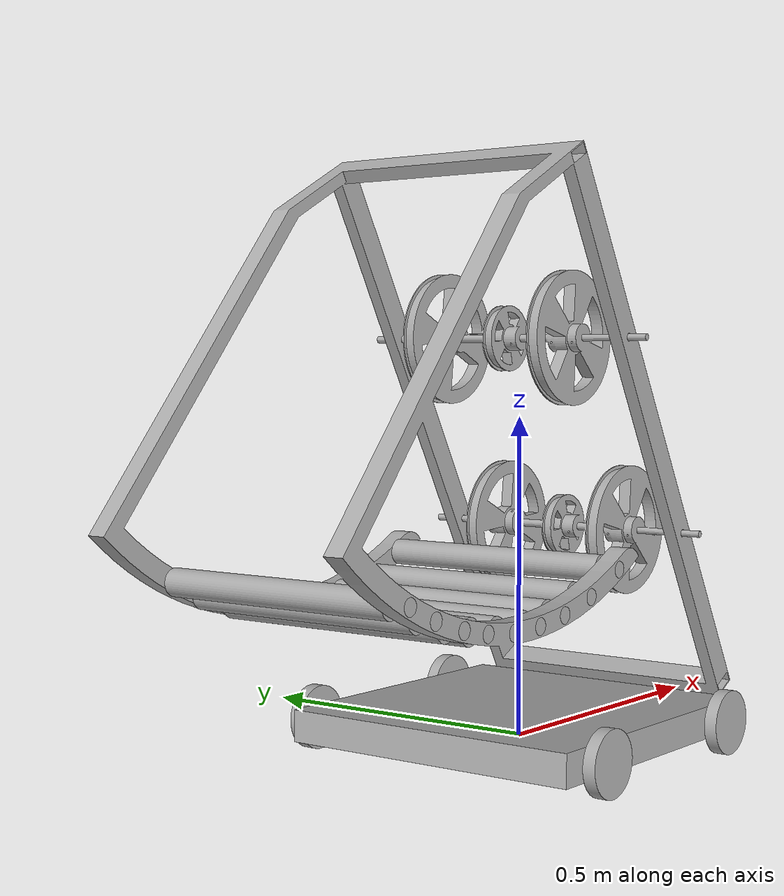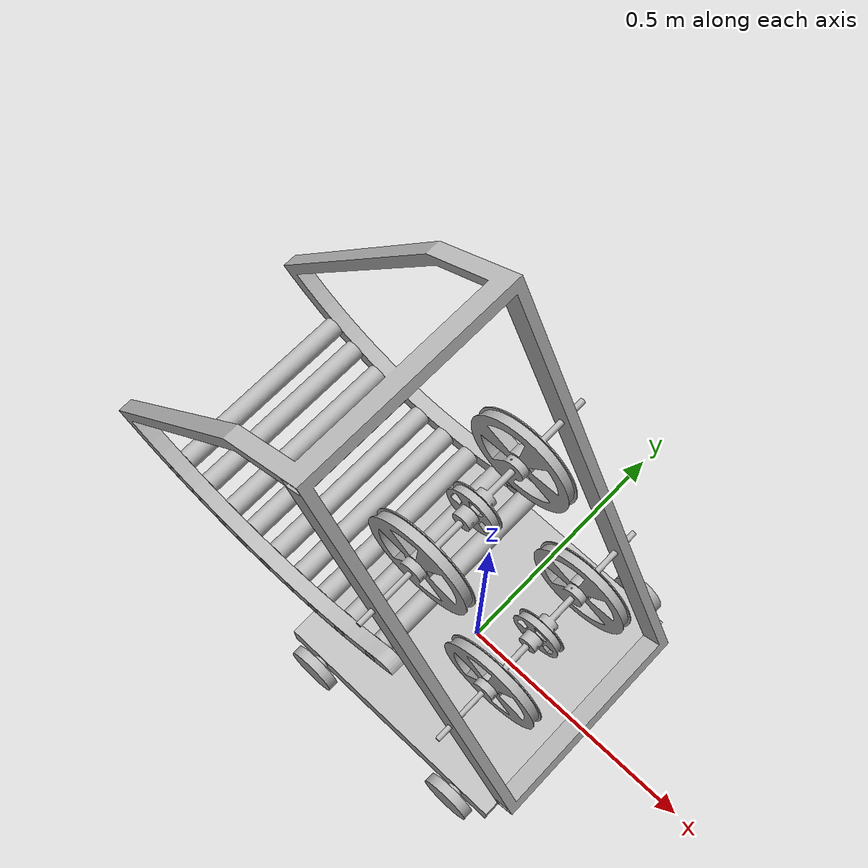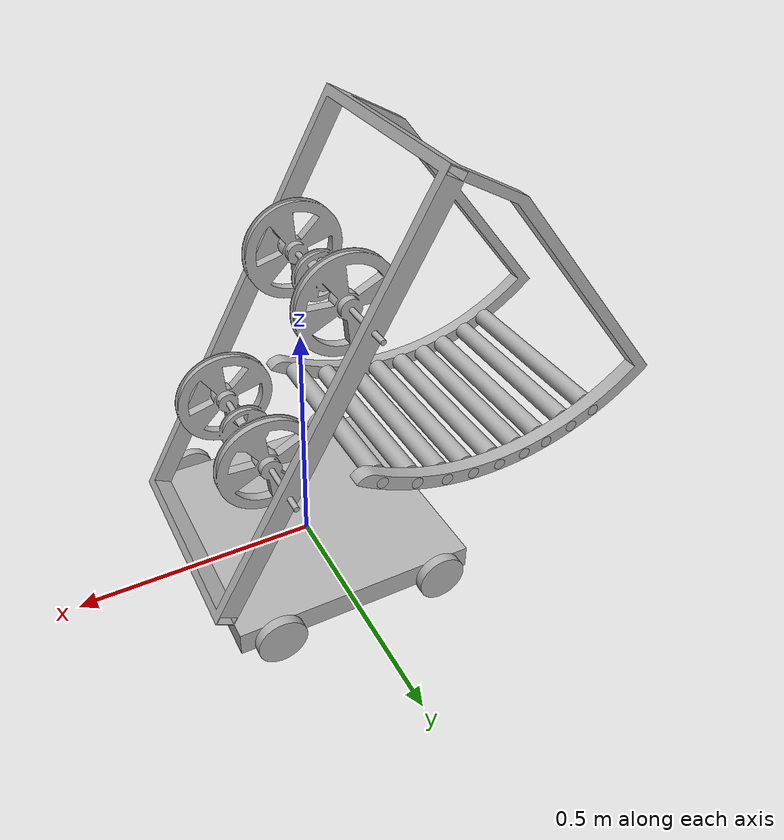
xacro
<?xml version="1.0" ?>
<robot name="shooting_set" xmlns:xacro="http://www.ros.org/wiki/xacro">

<xacro:arg name="robot_name" default="r1"/>
<xacro:macro name='set_robot' params='robot_name'/>
<xacro:property name="robot_name" value="$(arg robot_name)"/>
<xacro:include filename="$(find shooting_set_description)/urdf/materials.xacro" />

<xacro:include filename="$(find rbcon_sim)/xacro/gazebo.xacro"/>

<link name="${robot_name}_base_link">
  <inertial>
    <origin xyz="0.0 9.292207268489756e-17 0.025" rpy="0 0 0"/>
    <mass value="9800.3469535209761"/>
    <inertia ixx="2.07916" iyy="2.071536" izz="4.109786" ixy="0.0" iyz="-0.0" ixz="0.0"/>
  </inertial>
  <visual>
    <origin xyz="0 0 0" rpy="0 0 0"/>
    <geometry>
      <mesh filename="file://$(find shooting_set_description)/meshes/base_link.stl" scale="0.001 0.001 0.001"/>
    </geometry>
    <material name="silver"/>
  </visual>
  <collision>
    <origin xyz="0 0 0" rpy="0 0 0"/>
    <geometry>
      <mesh filename="file://$(find shooting_set_description)/meshes/base_link.stl" scale="0.001 0.001 0.001"/>
    </geometry>
  </collision>
</link>

<link name="${robot_name}_lb_wheel_1">
  <inertial>
    <origin xyz="0.0 0.010000000000000009 -2.7755575615628914e-17" rpy="0 0 0"/>
    <mass value="1.2330751165339937"/>
    <inertia ixx="0.000812" iyy="0.001541" izz="0.000812" ixy="0.0" iyz="0.0" ixz="-0.0"/>
  </inertial>
  <visual>
    <origin xyz="0.175 -0.26 -0.025" rpy="0 0 0"/>
    <geometry>
      <mesh filename="file://$(find shooting_set_description)/meshes/lb_wheel_1.stl" scale="0.001 0.001 0.001"/>
    </geometry>
    <material name="silver"/>
  </visual>
  <collision>
    <origin xyz="0.175 -0.26 -0.025" rpy="0 0 0"/>
    <geometry>
      <mesh filename="file://$(find shooting_set_description)/meshes/lb_wheel_1.stl" scale="0.001 0.001 0.001"/>
    </geometry>
  </collision>
</link>

<link name="${robot_name}_lf_front_1">
  <inertial>
    <origin xyz="0.0 0.009999999999999787 -1.0408340855860843e-17" rpy="0 0 0"/>
    <mass value="1.2330751165339937"/>
    <inertia ixx="0.000812" iyy="0.001541" izz="0.000812" ixy="0.0" iyz="-0.0" ixz="-0.0"/>
  </inertial>
  <visual>
    <origin xyz="-0.175 -0.26 -0.025" rpy="0 0 0"/>
    <geometry>
      <mesh filename="file://$(find shooting_set_description)/meshes/lf_front_1.stl" scale="0.001 0.001 0.001"/>
    </geometry>
    <material name="silver"/>
  </visual>
  <collision>
    <origin xyz="-0.175 -0.26 -0.025" rpy="0 0 0"/>
    <geometry>
      <mesh filename="file://$(find shooting_set_description)/meshes/lf_front_1.stl" scale="0.001 0.001 0.001"/>
    </geometry>
  </collision>
</link>

<link name="${robot_name}_rb_wheel_1">
  <inertial>
    <origin xyz="0.0 -0.010000000000000009 -4.85722573273506e-17" rpy="0 0 0"/>
    <mass value="1.2330751165339937"/>
    <inertia ixx="0.000812" iyy="0.001541" izz="0.000812" ixy="0.0" iyz="-0.0" ixz="0.0"/>
  </inertial>
  <visual>
    <origin xyz="0.175 0.26 -0.025" rpy="0 0 0"/>
    <geometry>
      <mesh filename="file://$(find shooting_set_description)/meshes/rb_wheel_1.stl" scale="0.001 0.001 0.001"/>
    </geometry>
    <material name="silver"/>
  </visual>
  <collision>
    <origin xyz="0.175 0.26 -0.025" rpy="0 0 0"/>
    <geometry>
      <mesh filename="file://$(find shooting_set_description)/meshes/rb_wheel_1.stl" scale="0.001 0.001 0.001"/>
    </geometry>
  </collision>
</link>

<link name="${robot_name}_rf_wheel_1">
  <inertial>
    <origin xyz="0.0 -0.010000000000000009 -6.245004513516506e-17" rpy="0 0 0"/>
    <mass value="1.2330751165339937"/>
    <inertia ixx="0.000812" iyy="0.001541" izz="0.000812" ixy="0.0" iyz="-0.0" ixz="0.0"/>
  </inertial>
  <visual>
    <origin xyz="-0.175 0.26 -0.025" rpy="0 0 0"/>
    <geometry>
      <mesh filename="file://$(find shooting_set_description)/meshes/rf_wheel_1.stl" scale="0.001 0.001 0.001"/>
    </geometry>
    <material name="silver"/>
  </visual>
  <collision>
    <origin xyz="-0.175 0.26 -0.025" rpy="0 0 0"/>
    <geometry>
      <mesh filename="file://$(find shooting_set_description)/meshes/rf_wheel_1.stl" scale="0.001 0.001 0.001"/>
    </geometry>
  </collision>
</link>

<link name="${robot_name}_frame_1">
  <inertial>
    <origin xyz="-0.2901920334892728 -7.433782179672166e-07 0.6075151070351665" rpy="0 0 0"/>
    <mass value="19.47541221497945"/>
    <inertia ixx="2.055728" iyy="2.35301" izz="1.869757" ixy="4e-06" iyz="0.0" ixz="0.198342"/>
  </inertial>
  <visual>
    <origin xyz="-0.25 -0.0 -0.05" rpy="0 0 0"/>
    <geometry>
      <mesh filename="file://$(find shooting_set_description)/meshes/frame_1.stl" scale="0.001 0.001 0.001"/>
    </geometry>
    <material name="silver"/>
  </visual>
  <collision>
    <origin xyz="-0.25 -0.0 -0.05" rpy="0 0 0"/>
    <geometry>
      <mesh filename="file://$(find shooting_set_description)/meshes/frame_1.stl" scale="0.001 0.001 0.001"/>
    </geometry>
  </collision>
</link>

<link name="${robot_name}_r_1_1">
  <inertial>
    <origin xyz="-4.4038692958991987e-07 0.2199999999999982 -3.4390913883353136e-07" rpy="0 0 0"/>
    <mass value="3.9797499386134634"/>
    <inertia ixx="0.055225" iyy="0.000768" izz="0.055225" ixy="0.0" iyz="-0.0" ixz="-0.0"/>
  </inertial>
  <visual>
    <origin xyz="0.346972 0.22 -0.643067" rpy="0 0 0"/>
    <geometry>
      <mesh filename="file://$(find shooting_set_description)/meshes/r_1_1.stl" scale="0.001 0.001 0.001"/>
    </geometry>
    <material name="silver"/>
  </visual>
  <collision>
    <origin xyz="0.346972 0.22 -0.643067" rpy="0 0 0"/>
    <geometry>
      <mesh filename="file://$(find shooting_set_description)/meshes/r_1_1.stl" scale="0.001 0.001 0.001"/>
    </geometry>
  </collision>
</link>

<link name="${robot_name}_r_2_1">
  <inertial>
    <origin xyz="-7.405491864176383e-08 0.21999999999999878 2.6937595631881806e-07" rpy="0 0 0"/>
    <mass value="3.9797499386134634"/>
    <inertia ixx="0.055225" iyy="0.000768" izz="0.055225" ixy="0.0" iyz="-0.0" ixz="0.0"/>
  </inertial>
  <visual>
    <origin xyz="0.312257 0.22 -0.596895" rpy="0 0 0"/>
    <geometry>
      <mesh filename="file://$(find shooting_set_description)/meshes/r_2_1.stl" scale="0.001 0.001 0.001"/>
    </geometry>
    <material name="silver"/>
  </visual>
  <collision>
    <origin xyz="0.312257 0.22 -0.596895" rpy="0 0 0"/>
    <geometry>
      <mesh filename="file://$(find shooting_set_description)/meshes/r_2_1.stl" scale="0.001 0.001 0.001"/>
    </geometry>
  </collision>
</link>

<link name="${robot_name}_r_3_1">
  <inertial>
    <origin xyz="1.1723409926167605e-07 0.21999999999999964 -3.962324170991849e-07" rpy="0 0 0"/>
    <mass value="3.9797499386134634"/>
    <inertia ixx="0.055225" iyy="0.000768" izz="0.055225" ixy="0.0" iyz="-0.0" ixz="-0.0"/>
  </inertial>
  <visual>
    <origin xyz="0.268927 0.22 -0.551064" rpy="0 0 0"/>
    <geometry>
      <mesh filename="file://$(find shooting_set_description)/meshes/r_3_1.stl" scale="0.001 0.001 0.001"/>
    </geometry>
    <material name="silver"/>
  </visual>
  <collision>
    <origin xyz="0.268927 0.22 -0.551064" rpy="0 0 0"/>
    <geometry>
      <mesh filename="file://$(find shooting_set_description)/meshes/r_3_1.stl" scale="0.001 0.001 0.001"/>
    </geometry>
  </collision>
</link>

<link name="${robot_name}_r_4_1">
  <inertial>
    <origin xyz="3.424262658702215e-07 0.2200000000000001 3.5659620423178495e-07" rpy="0 0 0"/>
    <mass value="3.9797499386134634"/>
    <inertia ixx="0.055225" iyy="0.000768" izz="0.055225" ixy="0.0" iyz="-0.0" ixz="-0.0"/>
  </inertial>
  <visual>
    <origin xyz="0.227637 0.22 -0.515991" rpy="0 0 0"/>
    <geometry>
      <mesh filename="file://$(find shooting_set_description)/meshes/r_4_1.stl" scale="0.001 0.001 0.001"/>
    </geometry>
    <material name="silver"/>
  </visual>
  <collision>
    <origin xyz="0.227637 0.22 -0.515991" rpy="0 0 0"/>
    <geometry>
      <mesh filename="file://$(find shooting_set_description)/meshes/r_4_1.stl" scale="0.001 0.001 0.001"/>
    </geometry>
  </collision>
</link>

<link name="${robot_name}_r_5_1">
  <inertial>
    <origin xyz="1.1261047686006442e-07 0.22000000000000072 3.9150747838112565e-07" rpy="0 0 0"/>
    <mass value="3.9797499386134634"/>
    <inertia ixx="0.055225" iyy="0.000768" izz="0.055225" ixy="0.0" iyz="-0.0" ixz="0.0"/>
  </inertial>
  <visual>
    <origin xyz="0.177738 0.22 -0.482044" rpy="0 0 0"/>
    <geometry>
      <mesh filename="file://$(find shooting_set_description)/meshes/r_5_1.stl" scale="0.001 0.001 0.001"/>
    </geometry>
    <material name="silver"/>
  </visual>
  <collision>
    <origin xyz="0.177738 0.22 -0.482044" rpy="0 0 0"/>
    <geometry>
      <mesh filename="file://$(find shooting_set_description)/meshes/r_5_1.stl" scale="0.001 0.001 0.001"/>
    </geometry>
  </collision>
</link>

<link name="${robot_name}_r_6_1">
  <inertial>
    <origin xyz="2.8352999972836024e-07 0.2200000000000013 1.8915213934045383e-07" rpy="0 0 0"/>
    <mass value="3.9797499386134634"/>
    <inertia ixx="0.055225" iyy="0.000768" izz="0.055225" ixy="0.0" iyz="-0.0" ixz="0.0"/>
  </inertial>
  <visual>
    <origin xyz="0.122397 0.22 -0.45303" rpy="0 0 0"/>
    <geometry>
      <mesh filename="file://$(find shooting_set_description)/meshes/r_6_1.stl" scale="0.001 0.001 0.001"/>
    </geometry>
    <material name="silver"/>
  </visual>
  <collision>
    <origin xyz="0.122397 0.22 -0.45303" rpy="0 0 0"/>
    <geometry>
      <mesh filename="file://$(find shooting_set_description)/meshes/r_6_1.stl" scale="0.001 0.001 0.001"/>
    </geometry>
  </collision>
</link>

<link name="${robot_name}_r_7_1">
  <inertial>
    <origin xyz="1.7445879428590327e-07 0.22000000000000142 -3.584304592019194e-07" rpy="0 0 0"/>
    <mass value="3.9797499386134634"/>
    <inertia ixx="0.055225" iyy="0.000768" izz="0.055225" ixy="0.0" iyz="-0.0" ixz="0.0"/>
  </inertial>
  <visual>
    <origin xyz="0.064746 0.22 -0.430713" rpy="0 0 0"/>
    <geometry>
      <mesh filename="file://$(find shooting_set_description)/meshes/r_7_1.stl" scale="0.001 0.001 0.001"/>
    </geometry>
    <material name="silver"/>
  </visual>
  <collision>
    <origin xyz="0.064746 0.22 -0.430713" rpy="0 0 0"/>
    <geometry>
      <mesh filename="file://$(find shooting_set_description)/meshes/r_7_1.stl" scale="0.001 0.001 0.001"/>
    </geometry>
  </collision>
</link>

<link name="${robot_name}_r_8_1">
  <inertial>
    <origin xyz="2.5863024027267256e-07 0.22000000000000167 1.184899844908216e-08" rpy="0 0 0"/>
    <mass value="3.9797499386134634"/>
    <inertia ixx="0.055225" iyy="0.000768" izz="0.055225" ixy="0.0" iyz="-0.0" ixz="0.0"/>
  </inertial>
  <visual>
    <origin xyz="-0.004463 0.22 -0.413709" rpy="0 0 0"/>
    <geometry>
      <mesh filename="file://$(find shooting_set_description)/meshes/r_8_1.stl" scale="0.001 0.001 0.001"/>
    </geometry>
    <material name="silver"/>
  </visual>
  <collision>
    <origin xyz="-0.004463 0.22 -0.413709" rpy="0 0 0"/>
    <geometry>
      <mesh filename="file://$(find shooting_set_description)/meshes/r_8_1.stl" scale="0.001 0.001 0.001"/>
    </geometry>
  </collision>
</link>

<link name="${robot_name}_r_9_1">
  <inertial>
    <origin xyz="1.3161276291029367e-08 0.22000000000000186 2.5103608858323412e-08" rpy="0 0 0"/>
    <mass value="3.9797499386134634"/>
    <inertia ixx="0.055225" iyy="0.000768" izz="0.055225" ixy="0.0" iyz="-0.0" ixz="0.0"/>
  </inertial>
  <visual>
    <origin xyz="-0.086869 0.22 -0.405018" rpy="0 0 0"/>
    <geometry>
      <mesh filename="file://$(find shooting_set_description)/meshes/r_9_1.stl" scale="0.001 0.001 0.001"/>
    </geometry>
    <material name="silver"/>
  </visual>
  <collision>
    <origin xyz="-0.086869 0.22 -0.405018" rpy="0 0 0"/>
    <geometry>
      <mesh filename="file://$(find shooting_set_description)/meshes/r_9_1.stl" scale="0.001 0.001 0.001"/>
    </geometry>
  </collision>
</link>

<link name="${robot_name}_upper_shaft_1">
  <inertial>
    <origin xyz="4.087776839245549e-09 0.2183484428038324 4.906737505194769e-08" rpy="0 0 0"/>
    <mass value="8.012651249272817"/>
    <inertia ixx="0.110666" iyy="0.033262" izz="0.110694" ixy="-0.0" iyz="0.0" ixz="-9.7e-05"/>
  </inertial>
  <visual>
    <origin xyz="-0.27 0.22 -0.691" rpy="0 0 0"/>
    <geometry>
      <mesh filename="file://$(find shooting_set_description)/meshes/upper_shaft_1.stl" scale="0.001 0.001 0.001"/>
    </geometry>
    <material name="silver"/>
  </visual>
  <collision>
    <origin xyz="-0.27 0.22 -0.691" rpy="0 0 0"/>
    <geometry>
      <mesh filename="file://$(find shooting_set_description)/meshes/upper_shaft_1.stl" scale="0.001 0.001 0.001"/>
    </geometry>
  </collision>
</link>

<link name="${robot_name}_bottom_shaft_1">
  <inertial>
    <origin xyz="4.087777005779003e-09 0.2183484428038849 4.906737494092539e-08" rpy="0 0 0"/>
    <mass value="8.012651249272817"/>
    <inertia ixx="0.110666" iyy="0.033262" izz="0.110694" ixy="-0.0" iyz="0.0" ixz="-9.7e-05"/>
  </inertial>
  <visual>
    <origin xyz="-0.27 0.22 -0.349" rpy="0 0 0"/>
    <geometry>
      <mesh filename="file://$(find shooting_set_description)/meshes/bottom_shaft_1.stl" scale="0.001 0.001 0.001"/>
    </geometry>
    <material name="silver"/>
  </visual>
  <collision>
    <origin xyz="-0.27 0.22 -0.349" rpy="0 0 0"/>
    <geometry>
      <mesh filename="file://$(find shooting_set_description)/meshes/bottom_shaft_1.stl" scale="0.001 0.001 0.001"/>
    </geometry>
  </collision>
</link>

<link name="${robot_name}_lidar_link_1">
</link>

<link name="${robot_name}_camera_link_1">
</link>

<link name="${robot_name}_base_footprint">

</link>

<joint name="${robot_name}_footprint_base_joint" type="fixed">
  <origin xyz="0.0 0.0 0.02" rpy="0 0 0"/>
  <parent link="${robot_name}_base_link"/>
  <child link="${robot_name}_base_footprint"/>
</joint>

<joint name="${robot_name}_camera_base_joint" type="fixed">
  <origin xyz="0.0 0.0 0.02" rpy="0 0 0"/>
  <parent link="${robot_name}_base_link"/>
  <child link="${robot_name}_camera_link_1"/>
</joint>

<joint name="${robot_name}_lidar_base_joint" type="fixed">
  <origin xyz="0.0 0.0 0.2" rpy="0 0 0"/>
  <parent link="${robot_name}_base_link"/>
  <child link="${robot_name}_lidar_link_1"/>
</joint>

<joint name="${robot_name}_lb_wheel_joint" type="continuous">
  <origin xyz="-0.175 0.26 0.025" rpy="0 0 0"/>
  <parent link="${robot_name}_base_link"/>
  <child link="${robot_name}_lb_wheel_1"/>
  <axis xyz="0.0 1.0 0.0"/>
</joint>

<joint name="${robot_name}_lf_wheel_joint" type="continuous">
  <origin xyz="0.175 0.26 0.025" rpy="0 0 0"/>
  <parent link="${robot_name}_base_link"/>
  <child link="${robot_name}_lf_front_1"/>
  <axis xyz="0.0 1.0 0.0"/>
</joint>

<joint name="${robot_name}_rb_wheel_joint" type="continuous">
  <origin xyz="-0.175 -0.26 0.025" rpy="0 0 0"/>
  <parent link="${robot_name}_base_link"/>
  <child link="${robot_name}_rb_wheel_1"/>
  <axis xyz="0.0 1.0 0.0"/>
</joint>

<joint name="${robot_name}_rf_wheel_joint" type="continuous">
  <origin xyz="0.175 -0.26 0.025" rpy="0 0 0"/>
  <parent link="${robot_name}_base_link"/>
  <child link="${robot_name}_rf_wheel_1"/>
  <axis xyz="0.0 1.0 0.0"/>
</joint>

<joint name="${robot_name}_frame_joint" type="continuous">
  <origin xyz="0.25 0.0 0.05" rpy="0 -0.5 0"/>
  <parent link="${robot_name}_base_link"/>
  <child link="${robot_name}_frame_1"/>
  <axis xyz="0.0 1.0 0.0"/>
</joint>

<joint name="${robot_name}_r1" type="continuous">
  <origin xyz="-0.596972 -0.22 0.593067" rpy="0 0 0"/>
  <parent link="${robot_name}_frame_1"/>
  <child link="${robot_name}_r_1_1"/>
  <axis xyz="-0.0 1.0 0.0"/>
</joint>

<joint name="${robot_name}_r2" type="continuous">
  <origin xyz="-0.562257 -0.22 0.546895" rpy="0 0 0"/>
  <parent link="${robot_name}_frame_1"/>
  <child link="${robot_name}_r_2_1"/>
  <axis xyz="-0.0 1.0 0.0"/>
</joint>

<joint name="${robot_name}_r3" type="continuous">
  <origin xyz="-0.518927 -0.22 0.501064" rpy="0 0 0"/>
  <parent link="${robot_name}_frame_1"/>
  <child link="${robot_name}_r_3_1"/>
  <axis xyz="-0.0 1.0 0.0"/>
</joint>

<joint name="${robot_name}_r4" type="continuous">
  <origin xyz="-0.477637 -0.22 0.465991" rpy="0 0 0"/>
  <parent link="${robot_name}_frame_1"/>
  <child link="${robot_name}_r_4_1"/>
  <axis xyz="-0.0 1.0 0.0"/>
</joint>

<joint name="${robot_name}_r5" type="continuous">
  <origin xyz="-0.427738 -0.22 0.432044" rpy="0 0 0"/>
  <parent link="${robot_name}_frame_1"/>
  <child link="${robot_name}_r_5_1"/>
  <axis xyz="-0.0 1.0 0.0"/>
</joint>

<joint name="${robot_name}_r6" type="continuous">
  <origin xyz="-0.372397 -0.22 0.40303" rpy="0 0 0"/>
  <parent link="${robot_name}_frame_1"/>
  <child link="${robot_name}_r_6_1"/>
  <axis xyz="-0.0 1.0 0.0"/>
</joint>

<joint name="${robot_name}_r7" type="continuous">
  <origin xyz="-0.314746 -0.22 0.380713" rpy="0 0 0"/>
  <parent link="${robot_name}_frame_1"/>
  <child link="${robot_name}_r_7_1"/>
  <axis xyz="-0.0 1.0 0.0"/>
</joint>

<joint name="${robot_name}_r8" type="continuous">
  <origin xyz="-0.245537 -0.22 0.363709" rpy="0 0 0"/>
  <parent link="${robot_name}_frame_1"/>
  <child link="${robot_name}_r_8_1"/>
  <axis xyz="-0.0 1.0 0.0"/>
</joint>

<joint name="${robot_name}_r9" type="continuous">
  <origin xyz="-0.163131 -0.22 0.355018" rpy="0 0 0"/>
  <parent link="${robot_name}_frame_1"/>
  <child link="${robot_name}_r_9_1"/>
  <axis xyz="-0.0 1.0 0.0"/>
</joint>

<joint name="${robot_name}_upper_shaft_joint" type="continuous">
  <origin xyz="0.02 -0.22 0.641" rpy="0 0 0"/>
  <parent link="${robot_name}_frame_1"/>
  <child link="${robot_name}_upper_shaft_1"/>
  <axis xyz="0.0 1.0 0.0"/>
</joint>

<joint name="${robot_name}_bottom_shaft_joint" type="continuous">
  <origin xyz="0.02 -0.22 0.299" rpy="0 0 0"/>
  <parent link="${robot_name}_frame_1"/>
  <child link="${robot_name}_bottom_shaft_1"/>
  <axis xyz="0.0 1.0 0.0"/>
</joint>

<xacro:mechanum_drive fl="${robot_name}_lf_wheel_joint" fr="${robot_name}_rf_wheel_joint" bl="${robot_name}_lb_wheel_joint" br="${robot_name}_rb_wheel_joint" radius="0.05" />

<xacro:lidar frame_id="${robot_name}_lidar_link_1" topic="${robot_name}_scan"/>

<xacro:camera frame_id="${robot_name}_camera_link_1" topic="${robot_name}_camera" height="400" width="500"/>
</robot>

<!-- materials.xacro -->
<robot name="shooting_set" xmlns:xacro="http://www.ros.org/wiki/xacro" >

<material name="silver">
  <color rgba="0.700 0.700 0.700 1.000"/>
</material>

</robot>
